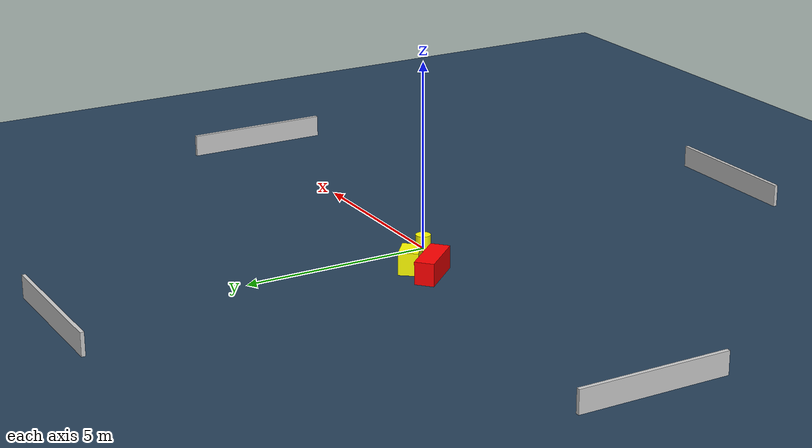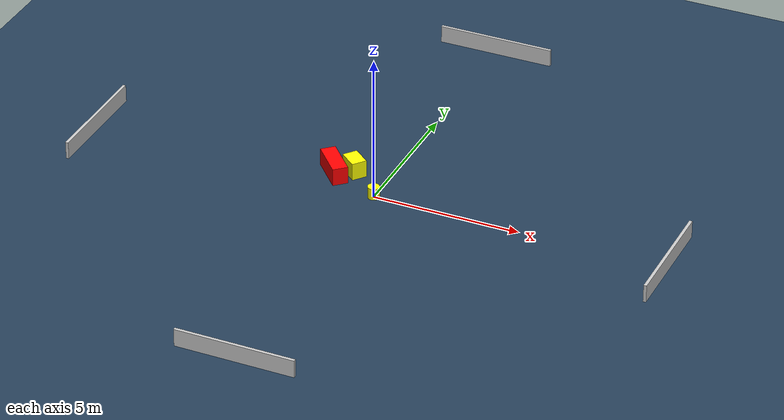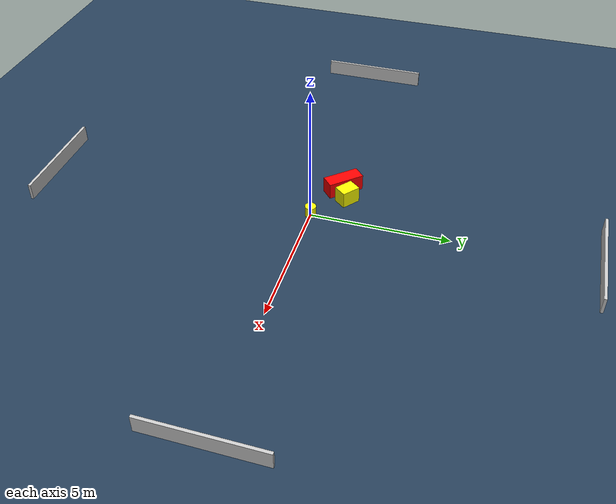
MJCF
<?xml version="1.0" ?>
<mujoco model="generated_environment">
  <option timestep="0.01" integrator="RK4" cone="elliptic"/>
  <default>
    <geom density="1"/>
  </default>
  <asset>
    <texture builtin="gradient" height="3072" name="skybox" rgb1="0.3 0.5 0.7" rgb2="0 0 0" type="skybox" width="512"/>
    <texture builtin="checker" height="300" name="groundplane" rgb1="0.2 0.3 0.4" rgb2="0.1 0.2 0.3" type="2d" width="300"/>
    <material name="groundplane" reflectance="0.2" texrepeat="5 5" texture="groundplane"/>
  </asset>
  <worldbody>
    <light dir="0 0 -1" directional="true" pos="0 0 1.5"/>
    <geom condim="3" friction="0.5 0.005 0.001" material="groundplane" name="floor" pos="0 0 0" size="0 0 0.05" type="plane"/>
    <body name="walls">
      <geom name="wall_1" condim="4" pos="-10.0 0.0 0.3" rgba="0.800000011920929 0.800000011920929 0.800000011920929 1.0" size="0.05 2.0 0.3" type="box"/>
      <geom name="wall_2" condim="4" pos="10.0 0.0 0.3" rgba="0.800000011920929 0.800000011920929 0.800000011920929 1.0" size="0.05 2.0 0.3" type="box"/>
      <geom name="wall_3" condim="4" pos="0.0 -10.0 0.3" rgba="0.800000011920929 0.800000011920929 0.800000011920929 1.0" size="2.0 0.05 0.3" type="box"/>
      <geom name="wall_4" condim="4" pos="0.0 10.0 0.3" rgba="0.800000011920929 0.800000011920929 0.800000011920929 1.0" size="2.0 0.05 0.3" type="box"/>
    </body>
    <body name="robot">
      <joint name="joint_x" type="slide" pos="0 0 0" axis="1 0 0"/>
      <joint name="joint_y" type="slide" pos="0 0 0" axis="0 1 0"/>
      <geom name="robot" type="cylinder" pos="0.0 0.0 0.2" size="0.2 0.2 0.0" mass="5.0" friction="1.0 0.005 0.0001" condim="4" rgba="1.0 1.0 0.0 1.0"/>
    </body>
    <body name="obstacle_1_movable">
      <geom name="obstacle_1_movable" condim="4" pos="-1.1516358085494383 1.0390935779628907 0.3" euler="0 0 231.48151706264176" friction="0.0 0.005 0.001" rgba="1.0 1.0 0.0 1.0" size="0.25566658882787463 0.34852432050603627 0.3" type="box" mass="0.1"/>
      <joint type="free"/>
    </body>
    <body name="obstacle_2_static">
      <geom name="obstacle_2_static" condim="4" pos="-1.737380572953965 0.7383274816777288 0.3" euler="0 0 222.26780371469613" friction="0.0 0.005 0.001" rgba="1.0 0.0 0.0 1.0" size="0.25688180151144785 0.6723282246634973 0.3" type="box"/>
    </body>
  </worldbody>
  <actuator>
    <motor name="actuator_x" joint="joint_x" gear="1" ctrlrange="-1 1"/>
    <motor name="actuator_y" joint="joint_y" gear="1" ctrlrange="-1 1"/>
  </actuator>
</mujoco>
